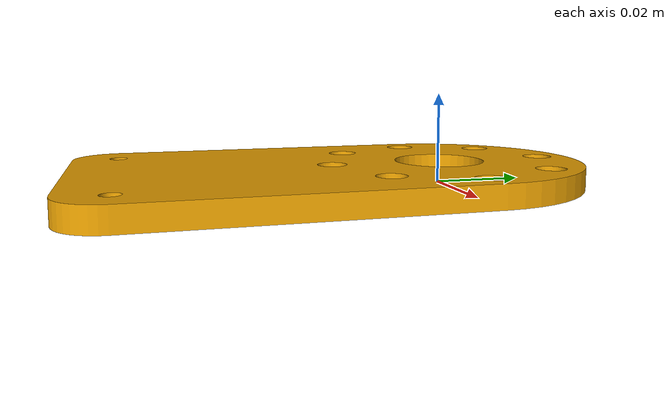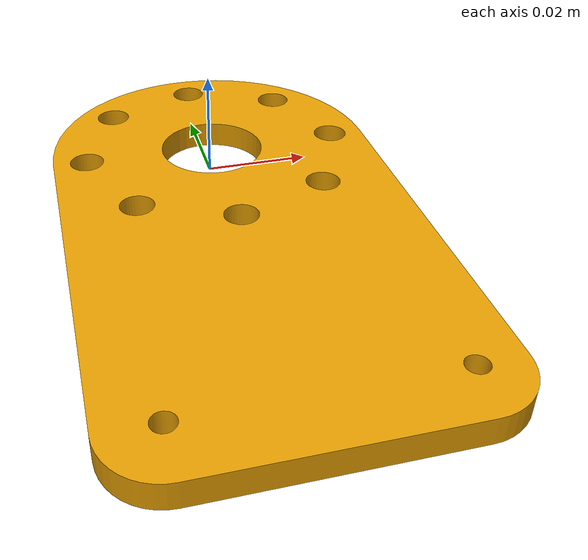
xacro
<?xml version="1.0"?>

<robot xmlns:xacro="http://ros.org/wiki/xacro" name="d415_adapter">
  <!-- Create the link of the hemisphere -->
  <link name="adapter_base">
    <visual>
      <geometry>
        <mesh filename="./realsense_d415/meshes/adapter.dae"/>
      </geometry>
    </visual>
  </link>

  <joint name="adapter_base_to_mount" type="fixed">
    <parent link="adapter_mount" />
    <child link = "adapter_base" />
    <origin xyz="-0.031 -0.08 0.0" rpy="0 0 0" />
  </joint>
  <link name="adapter_mount"/>

  <joint name="adapter_base_to_mount2" type="fixed">
    <parent link="adapter_mount" />
    <child link = "adapter_mount2" />
    <origin xyz="0.0 0.0 0.005" rpy="0 0 0" />
  </joint>
  <link name="adapter_mount2"/>

  <joint name="adapter_base_to_mount3" type="fixed">
    <parent link="adapter_mount2" />
    <child link = "adapter_mount3" />
    <origin xyz="0.024 -0.07 0.0" rpy="0 0 0" />
  </joint>
  <link name="adapter_mount3"/>

</robot>
